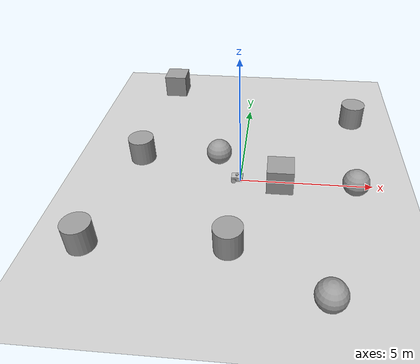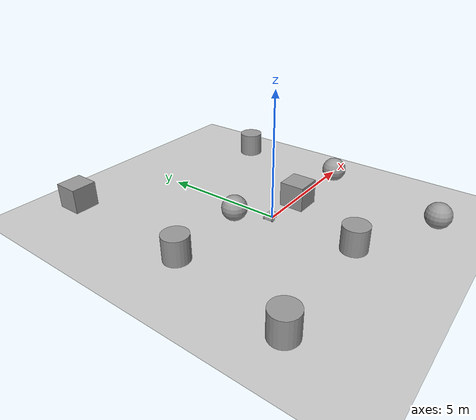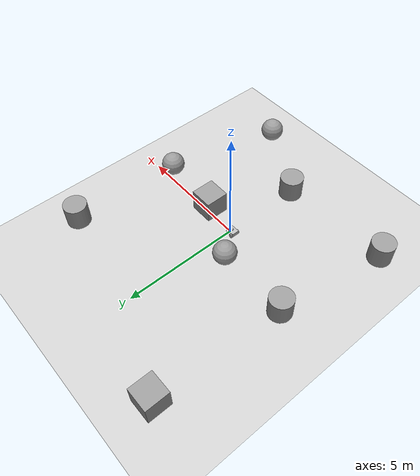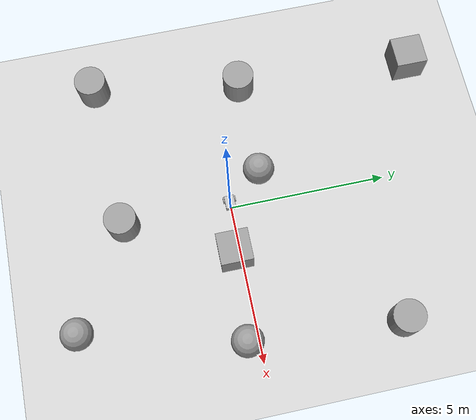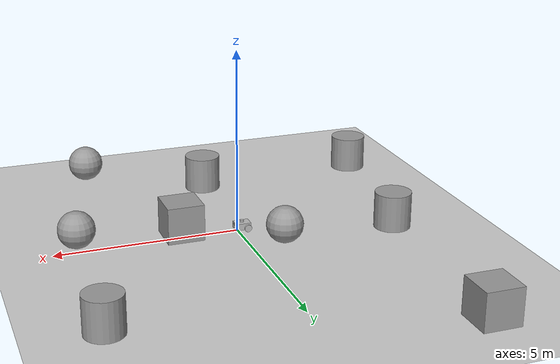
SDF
<sdf version="1.7">
 <world name="default">
  <light name="sun" type="directional">
   <pose>0 0 10 0 -0 0</pose>
   <diffuse>0.8 0.8 0.8 1</diffuse>
   <specular>0.2 0.2 0.2 1</specular>
   <attenuation>
    <range>1000</range>
    <constant>0.9</constant>
    <linear>0.01</linear>
    <quadratic>0.001</quadratic>
   </attenuation>
   <direction>-0.5 0.1 -0.9</direction>
   <spot><inner_angle>0</inner_angle><outer_angle>0</outer_angle><falloff>0</falloff></spot>
  </light>
  <model name="ground_plane">
   <static>1</static>
   <link name="link">
    <collision name="collision">
     <geometry><plane><normal>0 0 1</normal><size>100 100</size></plane></geometry>
     <surface><friction><ode><mu>100</mu><mu2>50</mu2></ode></friction></surface>
    </collision>
    <visual name="visual">
     <cast_shadows>0</cast_shadows>
     <geometry><plane><normal>0 0 1</normal><size>100 100</size></plane></geometry>
     <material>
      <script><uri>file://media/materials/scripts/gazebo.material</uri><name>Gazebo/Grey</name></script>
     </material>
    </visual>
   </link>
  </model>
  <gravity>0 0 -9.8</gravity>
  <magnetic_field>6e-06 2.3e-05 -4.2e-05</magnetic_field>
  <atmosphere type="adiabatic"/>
  <physics type="ode">
   <max_step_size>0.001</max_step_size>
   <real_time_factor>1</real_time_factor>
   <real_time_update_rate>1000</real_time_update_rate>
  </physics>
  <scene><ambient>0.4 0.4 0.4 1</ambient><background>0.7 0.7 0.7 1</background><shadows>1</shadows></scene>
  <spherical_coordinates>
   <surface_model>EARTH_WGS84</surface_model>
   <latitude_deg>0</latitude_deg>
   <longitude_deg>0</longitude_deg>
   <elevation>0</elevation>
   <heading_deg>0</heading_deg>
  </spherical_coordinates>
  <model name="unit_box">
   <pose>1.51272 -0.181423 0.499995 1e-05 -0 0</pose>
   <link name="link">
    <inertial>
     <mass>1</mass>
     <inertia>
      <ixx>0.166667</ixx>
      <ixy>0</ixy>
      <ixz>0</ixz>
      <iyy>0.166667</iyy>
      <iyz>0</iyz>
      <izz>0.166667</izz>
     </inertia>
    </inertial>
    <collision name="collision"><geometry><box><size>1 1 1</size></box></geometry></collision>
    <visual name="visual">
     <geometry><box><size>1 1 1</size></box></geometry>
     <material>
      <script><name>Gazebo/Grey</name><uri>file://media/materials/scripts/gazebo.material</uri></script>
     </material>
    </visual>
   </link>
  </model>
  <model name="unit_sphere">
   <pose>-0.944955 1.09802 0.5 0 -0 0</pose>
   <link name="link">
    <inertial>
     <mass>1</mass>
     <inertia><ixx>0.1</ixx><ixy>0</ixy><ixz>0</ixz><iyy>0.1</iyy><iyz>0</iyz><izz>0.1</izz></inertia>
    </inertial>
    <collision name="collision"><geometry><sphere><radius>0.5</radius></sphere></geometry></collision>
    <visual name="visual">
     <geometry><sphere><radius>0.5</radius></sphere></geometry>
     <material>
      <script><name>Gazebo/Grey</name><uri>file://media/materials/scripts/gazebo.material</uri></script>
     </material>
    </visual>
   </link>
  </model>
  <audio><device>default</device></audio>
  <model name="sam_bot">
   <link name="base_link">
    <inertial>
     <pose>0.004919 0 -0.001729 1.5708 -0 1.5708</pose>
     <mass>15.76</mass>
     <inertia>
      <ixx>0.280824</ixx>
      <ixy>1.64009e-18</ixy>
      <ixz>-3.12639e-18</ixz>
      <iyy>0.354548</iyy>
      <iyz>0.0057897</iyz>
      <izz>0.169412</izz>
     </inertia>
    </inertial>
    <collision name="base_link_collision"><geometry><box><size>0.42 0.31 0.18</size></box></geometry></collision>
    <collision name="base_link_fixed_joint_lump__camera_link_collision_1">
     <pose>0.215 0 0.05 0 -0 0</pose>
     <geometry><box><size>0.015 0.13 0.022</size></box></geometry>
    </collision>
    <collision name="base_link_fixed_joint_lump__front_caster_collision_2">
     <pose>0.14 0 -0.09 0 -0 0</pose>
     <geometry><sphere><radius>0.06</radius></sphere></geometry>
    </collision>
    <collision name="base_link_fixed_joint_lump__imu_link_collision_3">
     <pose>0 0 0.01 0 -0 0</pose>
     <geometry><box><size>0.1 0.1 0.1</size></box></geometry>
    </collision>
    <collision name="base_link_fixed_joint_lump__lidar_link_collision_4">
     <pose>0 0 0.12 0 -0 0</pose>
     <geometry><cylinder><length>0.055</length><radius>0.0508</radius></cylinder></geometry>
    </collision>
    <visual name="base_link_visual"><geometry><box><size>0.42 0.31 0.18</size></box></geometry></visual>
    <visual name="base_link_fixed_joint_lump__camera_link_visual_1">
     <pose>0.215 0 0.05 0 -0 0</pose>
     <geometry><box><size>0.015 0.13 0.022</size></box></geometry>
    </visual>
    <visual name="base_link_fixed_joint_lump__front_caster_visual_2">
     <pose>0.14 0 -0.09 0 -0 0</pose>
     <geometry><sphere><radius>0.06</radius></sphere></geometry>
    </visual>
    <visual name="base_link_fixed_joint_lump__imu_link_visual_3">
     <pose>0 0 0.01 0 -0 0</pose>
     <geometry><box><size>0.1 0.1 0.1</size></box></geometry>
    </visual>
    <visual name="base_link_fixed_joint_lump__lidar_link_visual_4">
     <pose>0 0 0.12 0 -0 0</pose>
     <geometry><cylinder><length>0.055</length><radius>0.0508</radius></cylinder></geometry>
    </visual>
    <sensor name="depth_camera" type="depth">
     <visualize>1</visualize>
     <update_rate>30</update_rate>
     <camera name="camera">
      <horizontal_fov>1.0472</horizontal_fov>
      <image><width>640</width><height>480</height><format>R8G8B8</format></image>
      <clip><near>0.05</near><far>3</far></clip>
     </camera>
     <plugin name="depth_camera_controller" filename="libgazebo_ros_camera.so">
      <baseline>0.2</baseline>
      <alwaysOn>1</alwaysOn>
      <updateRate>0.0</updateRate>
      <frame_name>camera_depth_frame</frame_name>
      <pointCloudCutoff>0.5</pointCloudCutoff>
      <pointCloudCutoffMax>3.0</pointCloudCutoffMax>
      <distortionK1>0</distortionK1>
      <distortionK2>0</distortionK2>
      <distortionK3>0</distortionK3>
      <distortionT1>0</distortionT1>
      <distortionT2>0</distortionT2>
      <CxPrime>0</CxPrime>
      <Cx>0</Cx>
      <Cy>0</Cy>
      <focalLength>0</focalLength>
      <hackBaseline>0</hackBaseline>
     </plugin>
     <pose>0.215 0 0.05 0 -0 0</pose>
    </sensor>
    <sensor name="imu_sensor" type="imu">
     <plugin name="imu_plugin" filename="libgazebo_ros_imu_sensor.so">
      <ros><namespace>/demo</namespace><remapping>~/out:=imu</remapping></ros>
      <initial_orientation_as_reference>0</initial_orientation_as_reference>
     </plugin>
     <always_on>1</always_on>
     <update_rate>100</update_rate>
     <visualize>1</visualize>
     <imu>
      <angular_velocity>
       <x>
        <noise type="gaussian">
         <mean>0</mean>
         <stddev>0.0002</stddev>
         <bias_mean>7.5e-06</bias_mean>
         <bias_stddev>8e-07</bias_stddev>
        </noise>
       </x>
       <y>
        <noise type="gaussian">
         <mean>0</mean>
         <stddev>0.0002</stddev>
         <bias_mean>7.5e-06</bias_mean>
         <bias_stddev>8e-07</bias_stddev>
        </noise>
       </y>
       <z>
        <noise type="gaussian">
         <mean>0</mean>
         <stddev>0.0002</stddev>
         <bias_mean>7.5e-06</bias_mean>
         <bias_stddev>8e-07</bias_stddev>
        </noise>
       </z>
      </angular_velocity>
      <linear_acceleration>
       <x>
        <noise type="gaussian">
         <mean>0</mean>
         <stddev>0.017</stddev>
         <bias_mean>0.1</bias_mean>
         <bias_stddev>0.001</bias_stddev>
        </noise>
       </x>
       <y>
        <noise type="gaussian">
         <mean>0</mean>
         <stddev>0.017</stddev>
         <bias_mean>0.1</bias_mean>
         <bias_stddev>0.001</bias_stddev>
        </noise>
       </y>
       <z>
        <noise type="gaussian">
         <mean>0</mean>
         <stddev>0.017</stddev>
         <bias_mean>0.1</bias_mean>
         <bias_stddev>0.001</bias_stddev>
        </noise>
       </z>
      </linear_acceleration>
     </imu>
     <pose>0 0 0.01 0 -0 0</pose>
    </sensor>
    <sensor name="lidar" type="ray">
     <always_on>1</always_on>
     <visualize>1</visualize>
     <update_rate>5</update_rate>
     <ray>
      <scan>
       <horizontal>
        <samples>360</samples>
        <resolution>1</resolution>
        <min_angle>0</min_angle>
        <max_angle>6.28</max_angle>
       </horizontal>
       <vertical><samples>1</samples><min_angle>0</min_angle><max_angle>0</max_angle></vertical>
      </scan>
      <range><min>0.12</min><max>3.5</max><resolution>0.015</resolution></range>
      <noise><type>gaussian</type><mean>0</mean><stddev>0.01</stddev></noise>
     </ray>
     <plugin name="scan" filename="libgazebo_ros_ray_sensor.so">
      <ros><remapping>~/out:=scan</remapping></ros>
      <output_type>sensor_msgs/LaserScan</output_type>
      <frame_name>lidar_link</frame_name>
     </plugin>
     <pose>0 0 0.12 0 -0 0</pose>
    </sensor>
   </link>
   <joint name="drivewhl_l_joint" type="revolute">
    <pose relative_to="base_link">-0.12 0.18 -0.05 0 -0 0</pose>
    <parent>base_link</parent>
    <child>drivewhl_l_link</child>
    <axis>
     <xyz>0 1 0</xyz>
     <limit><lower>-1e+16</lower><upper>1e+16</upper></limit>
     <dynamics><spring_reference>0</spring_reference><spring_stiffness>0</spring_stiffness></dynamics>
    </axis>
   </joint>
   <link name="drivewhl_l_link">
    <pose relative_to="drivewhl_l_joint">0 0 0 0 -0 0</pose>
    <inertial>
     <pose>0 0 0 1.5708 -0 0</pose>
     <mass>0.5</mass>
     <inertia>
      <ixx>0.00131667</ixx>
      <ixy>0</ixy>
      <ixz>0</ixz>
      <iyy>0.00131667</iyy>
      <iyz>0</iyz>
      <izz>0.0025</izz>
     </inertia>
    </inertial>
    <collision name="drivewhl_l_link_collision">
     <pose>0 0 0 1.5708 -0 0</pose>
     <geometry><cylinder><length>0.04</length><radius>0.1</radius></cylinder></geometry>
    </collision>
    <visual name="drivewhl_l_link_visual">
     <pose>0 0 0 1.5708 -0 0</pose>
     <geometry><cylinder><length>0.04</length><radius>0.1</radius></cylinder></geometry>
    </visual>
   </link>
   <joint name="drivewhl_r_joint" type="revolute">
    <pose relative_to="base_link">-0.12 -0.18 -0.05 0 -0 0</pose>
    <parent>base_link</parent>
    <child>drivewhl_r_link</child>
    <axis>
     <xyz>0 1 0</xyz>
     <limit><lower>-1e+16</lower><upper>1e+16</upper></limit>
     <dynamics><spring_reference>0</spring_reference><spring_stiffness>0</spring_stiffness></dynamics>
    </axis>
   </joint>
   <link name="drivewhl_r_link">
    <pose relative_to="drivewhl_r_joint">0 0 0 0 -0 0</pose>
    <inertial>
     <pose>0 0 0 1.5708 -0 0</pose>
     <mass>0.5</mass>
     <inertia>
      <ixx>0.00131667</ixx>
      <ixy>0</ixy>
      <ixz>0</ixz>
      <iyy>0.00131667</iyy>
      <iyz>0</iyz>
      <izz>0.0025</izz>
     </inertia>
    </inertial>
    <collision name="drivewhl_r_link_collision">
     <pose>0 0 0 1.5708 -0 0</pose>
     <geometry><cylinder><length>0.04</length><radius>0.1</radius></cylinder></geometry>
    </collision>
    <visual name="drivewhl_r_link_visual">
     <pose>0 0 0 1.5708 -0 0</pose>
     <geometry><cylinder><length>0.04</length><radius>0.1</radius></cylinder></geometry>
    </visual>
   </link>
   <plugin name="diff_drive" filename="libgazebo_ros_diff_drive.so">
    <ros><namespace>/demo</namespace><remap from="cmd_vel" to="/cmd_vel"/></ros>
    <left_joint>drivewhl_l_joint</left_joint>
    <right_joint>drivewhl_r_joint</right_joint>
    <wheel_separation>0.4</wheel_separation>
    <wheel_diameter>0.2</wheel_diameter>
    <max_wheel_torque>20</max_wheel_torque>
    <max_wheel_acceleration>1.0</max_wheel_acceleration>
    <publish_odom>1</publish_odom>
    <publish_odom_tf>0</publish_odom_tf>
    <publish_wheel_tf>1</publish_wheel_tf>
    <odometry_frame>odom</odometry_frame>
    <robot_base_frame>base_link</robot_base_frame>
   </plugin>
   <frame name="base_joint" attached_to="base_link"><pose>0 0 -0.15 0 -0 0</pose></frame>
   <frame name="base_footprint" attached_to="base_joint"/>
   <frame name="camera_depth_joint" attached_to="camera_link"><pose>0 0 0 -1.5708 -0 -1.5708</pose></frame>
   <frame name="camera_depth_frame" attached_to="camera_depth_joint"/>
   <frame name="camera_joint" attached_to="base_link"><pose>0.215 0 0.05 0 -0 0</pose></frame>
   <frame name="camera_link" attached_to="camera_joint"/>
   <frame name="caster_joint" attached_to="base_link"><pose>0.14 0 -0.09 0 -0 0</pose></frame>
   <frame name="front_caster" attached_to="caster_joint"/>
   <frame name="imu_joint" attached_to="base_link"><pose>0 0 0.01 0 -0 0</pose></frame>
   <frame name="imu_link" attached_to="imu_joint"/>
   <frame name="lidar_joint" attached_to="base_link"><pose>0 0 0.12 0 -0 0</pose></frame>
   <frame name="lidar_link" attached_to="lidar_joint"/>
   <pose>-0.126465 -0.003323 0.15 0 -1e-06 0.00933</pose>
  </model>
  <light name="user_directional_light_0" type="directional">
   <pose>-7.62424 7.32805 1 0 -0 0</pose>
   <diffuse>0.5 0.5 0.5 1</diffuse>
   <specular>0.1 0.1 0.1 1</specular>
   <direction>0.1 0.1 -0.9</direction>
   <attenuation>
    <range>20</range>
    <constant>0.5</constant>
    <linear>0.01</linear>
    <quadratic>0.001</quadratic>
   </attenuation>
  </light>
  <light name="user_directional_light_1" type="directional">
   <pose>4.33005 7.3987 1 0 -0 0</pose>
   <diffuse>0.5 0.5 0.5 1</diffuse>
   <specular>0.1 0.1 0.1 1</specular>
   <direction>0.1 0.1 -0.9</direction>
   <attenuation>
    <range>20</range>
    <constant>0.5</constant>
    <linear>0.01</linear>
    <quadratic>0.001</quadratic>
   </attenuation>
  </light>
  <light name="user_directional_light_2" type="directional">
   <pose>8.19158 -5.07495 1 0 -0 0</pose>
   <diffuse>0.5 0.5 0.5 1</diffuse>
   <specular>0.1 0.1 0.1 1</specular>
   <direction>0.1 0.1 -0.9</direction>
   <attenuation>
    <range>20</range>
    <constant>0.5</constant>
    <linear>0.01</linear>
    <quadratic>0.001</quadratic>
   </attenuation>
  </light>
  <light name="user_directional_light_3" type="directional">
   <pose>-5.59436 -7.49857 1 0 -0 0</pose>
   <diffuse>0.5 0.5 0.5 1</diffuse>
   <specular>0.1 0.1 0.1 1</specular>
   <direction>0.1 0.1 -0.9</direction>
   <attenuation>
    <range>20</range>
    <constant>0.5</constant>
    <linear>0.01</linear>
    <quadratic>0.001</quadratic>
   </attenuation>
  </light>
  <light name="user_directional_light_4" type="directional">
   <pose>1.8777 -7.57232 1 0 -0 0</pose>
   <diffuse>0.5 0.5 0.5 1</diffuse>
   <specular>0.1 0.1 0.1 1</specular>
   <direction>0.1 0.1 -0.9</direction>
   <attenuation>
    <range>20</range>
    <constant>0.5</constant>
    <linear>0.01</linear>
    <quadratic>0.001</quadratic>
   </attenuation>
  </light>
  <light name="user_directional_light_5" type="directional">
   <pose>8.11496 1.45931 1 0 -0 0</pose>
   <diffuse>0.5 0.5 0.5 1</diffuse>
   <specular>0.1 0.1 0.1 1</specular>
   <direction>0.1 0.1 -0.9</direction>
   <attenuation>
    <range>20</range>
    <constant>0.5</constant>
    <linear>0.01</linear>
    <quadratic>0.001</quadratic>
   </attenuation>
  </light>
  <light name="user_directional_light_6" type="directional">
   <pose>-8.42238 0.166191 1 0 -0 0</pose>
   <diffuse>0.5 0.5 0.5 1</diffuse>
   <specular>0.1 0.1 0.1 1</specular>
   <direction>0.1 0.1 -0.9</direction>
   <attenuation>
    <range>20</range>
    <constant>0.5</constant>
    <linear>0.01</linear>
    <quadratic>0.001</quadratic>
   </attenuation>
  </light>
  <model name="unit_cylinder">
   <pose>-4.86988 -3.66139 0.499998 3e-06 -4e-06 0</pose>
   <link name="link">
    <inertial>
     <mass>1</mass>
     <inertia><ixx>0.145833</ixx><ixy>0</ixy><ixz>0</ixz><iyy>0.145833</iyy><iyz>0</iyz><izz>0.125</izz></inertia>
    </inertial>
    <collision name="collision">
     <geometry><cylinder><radius>0.5</radius><length>1</length></cylinder></geometry>
    </collision>
    <visual name="visual">
     <geometry><cylinder><radius>0.5</radius><length>1</length></cylinder></geometry>
     <material>
      <script><name>Gazebo/Grey</name><uri>file://media/materials/scripts/gazebo.material</uri></script>
     </material>
    </visual>
   </link>
  </model>
  <model name="unit_box_0">
   <pose>-3.7943 6.75504 0.499995 -1e-05 -0 -0</pose>
   <link name="link">
    <inertial>
     <mass>1</mass>
     <inertia>
      <ixx>0.166667</ixx>
      <ixy>0</ixy>
      <ixz>0</ixz>
      <iyy>0.166667</iyy>
      <iyz>0</iyz>
      <izz>0.166667</izz>
     </inertia>
    </inertial>
    <collision name="collision"><geometry><box><size>1 1 1</size></box></geometry></collision>
    <visual name="visual">
     <geometry><box><size>1 1 1</size></box></geometry>
     <material>
      <script><name>Gazebo/Grey</name><uri>file://media/materials/scripts/gazebo.material</uri></script>
     </material>
    </visual>
   </link>
  </model>
  <model name="unit_sphere_0">
   <pose>3.05337 -5.27204 0.5 0 -0 0</pose>
   <link name="link">
    <inertial>
     <mass>1</mass>
     <inertia><ixx>0.1</ixx><ixy>0</ixy><ixz>0</ixz><iyy>0.1</iyy><iyz>0</iyz><izz>0.1</izz></inertia>
    </inertial>
    <collision name="collision"><geometry><sphere><radius>0.5</radius></sphere></geometry></collision>
    <visual name="visual">
     <geometry><sphere><radius>0.5</radius></sphere></geometry>
     <material>
      <script><name>Gazebo/Grey</name><uri>file://media/materials/scripts/gazebo.material</uri></script>
     </material>
    </visual>
   </link>
  </model>
  <model name="unit_cylinder_0">
   <pose>4.619 4.41754 0.499993 -3e-06 -3e-06 0</pose>
   <link name="link">
    <inertial>
     <mass>1</mass>
     <inertia><ixx>0.145833</ixx><ixy>0</ixy><ixz>0</ixz><iyy>0.145833</iyy><iyz>0</iyz><izz>0.125</izz></inertia>
    </inertial>
    <collision name="collision">
     <geometry><cylinder><radius>0.5</radius><length>1</length></cylinder></geometry>
    </collision>
    <visual name="visual">
     <geometry><cylinder><radius>0.5</radius><length>1</length></cylinder></geometry>
     <material>
      <script><name>Gazebo/Grey</name><uri>file://media/materials/scripts/gazebo.material</uri></script>
     </material>
    </visual>
   </link>
  </model>
  <model name="unit_cylinder_1">
   <pose>-4.08026 1.08511 0.499997 3e-06 4e-06 -0</pose>
   <link name="link">
    <inertial>
     <mass>1</mass>
     <inertia><ixx>0.145833</ixx><ixy>0</ixy><ixz>0</ixz><iyy>0.145833</iyy><iyz>0</iyz><izz>0.125</izz></inertia>
    </inertial>
    <collision name="collision">
     <geometry><cylinder><radius>0.5</radius><length>1</length></cylinder></geometry>
    </collision>
    <visual name="visual">
     <geometry><cylinder><radius>0.5</radius><length>1</length></cylinder></geometry>
     <material>
      <script><name>Gazebo/Grey</name><uri>file://media/materials/scripts/gazebo.material</uri></script>
     </material>
    </visual>
   </link>
  </model>
  <model name="unit_cylinder_2">
   <pose>-0.070361 -3.42688 0.499993 -3e-06 -4e-06 -0</pose>
   <link name="link">
    <inertial>
     <mass>1</mass>
     <inertia><ixx>0.145833</ixx><ixy>0</ixy><ixz>0</ixz><iyy>0.145833</iyy><iyz>0</iyz><izz>0.125</izz></inertia>
    </inertial>
    <collision name="collision">
     <geometry><cylinder><radius>0.5</radius><length>1</length></cylinder></geometry>
    </collision>
    <visual name="visual">
     <geometry><cylinder><radius>0.5</radius><length>1</length></cylinder></geometry>
     <material>
      <script><name>Gazebo/Grey</name><uri>file://media/materials/scripts/gazebo.material</uri></script>
     </material>
    </visual>
   </link>
  </model>
  <model name="unit_sphere_1">
   <pose>4.29376 -0.357087 0.5 0 -0 0</pose>
   <link name="link">
    <inertial>
     <mass>1</mass>
     <inertia><ixx>0.1</ixx><ixy>0</ixy><ixz>0</ixz><iyy>0.1</iyy><iyz>0</iyz><izz>0.1</izz></inertia>
    </inertial>
    <collision name="collision"><geometry><sphere><radius>0.5</radius></sphere></geometry></collision>
    <visual name="visual">
     <geometry><sphere><radius>0.5</radius></sphere></geometry>
     <material>
      <script><name>Gazebo/Grey</name><uri>file://media/materials/scripts/gazebo.material</uri></script>
     </material>
    </visual>
   </link>
  </model>
 </world>
</sdf>
